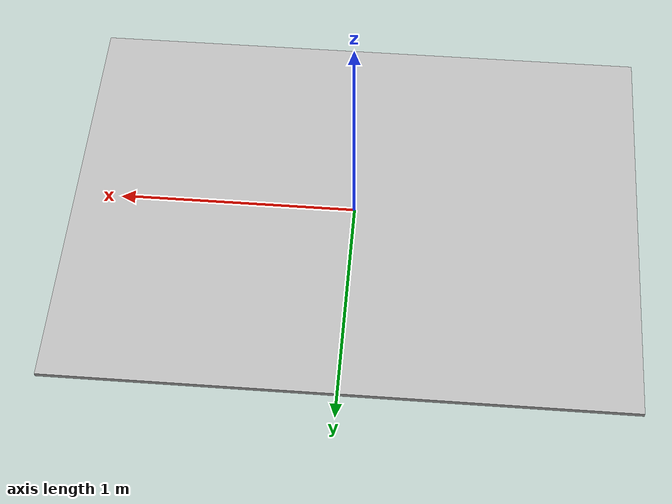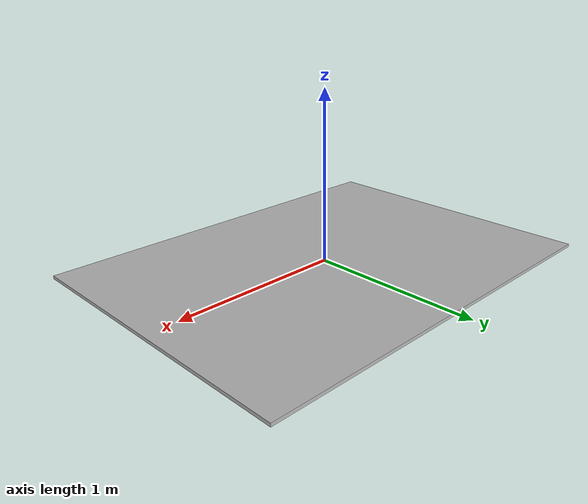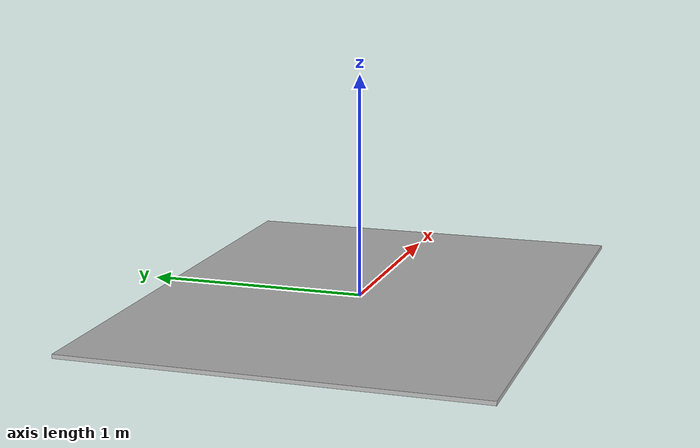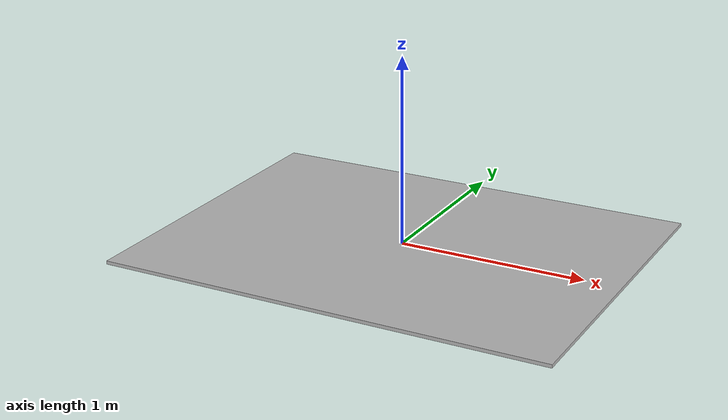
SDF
<?xml version="1.0" ?>
<sdf version="1.6">
  <model name="small_loop">
    <static>true</static>
    <link name="link">
      <visual name="visual">
        <geometry>
          <mesh>
            <uri>model://foxy_description/assets/small_loop/small_loop.dae</uri>
          </mesh>
        </geometry>
      </visual>
      <collision name="collision">
        <geometry>
          <box>
            <size>2.4 1.8 0.018</size>
          </box>
        </geometry>
      </collision>
    </link>
  </model>
</sdf>
